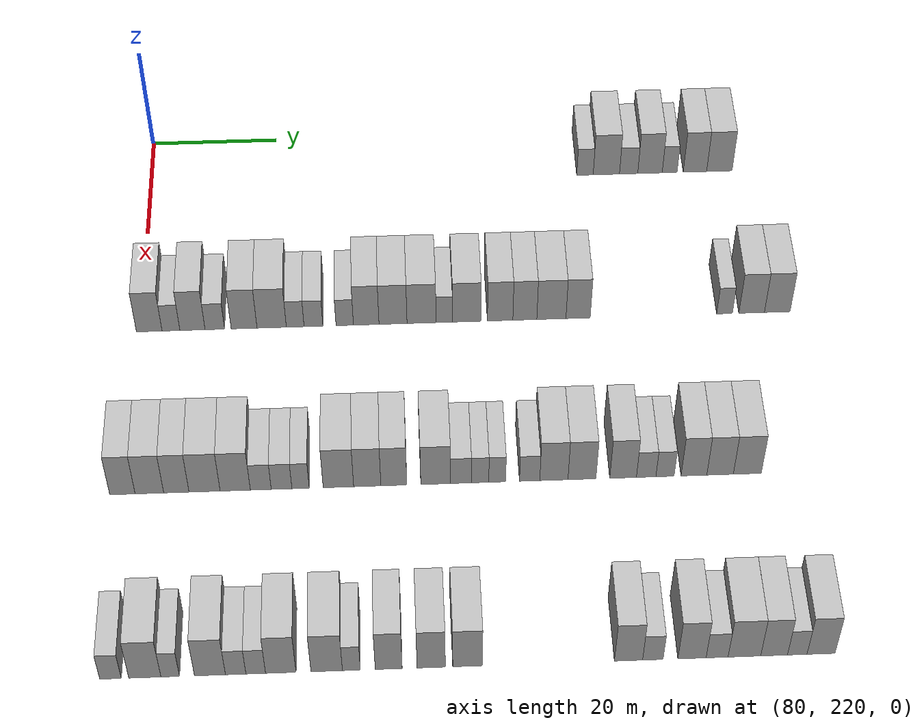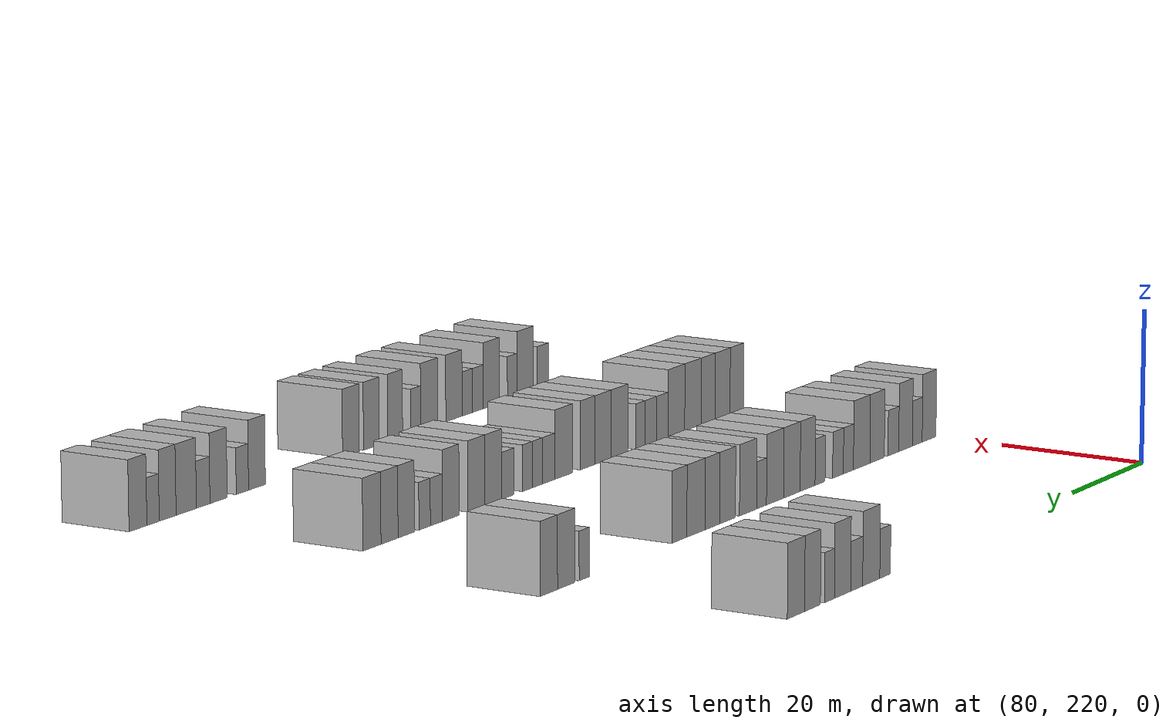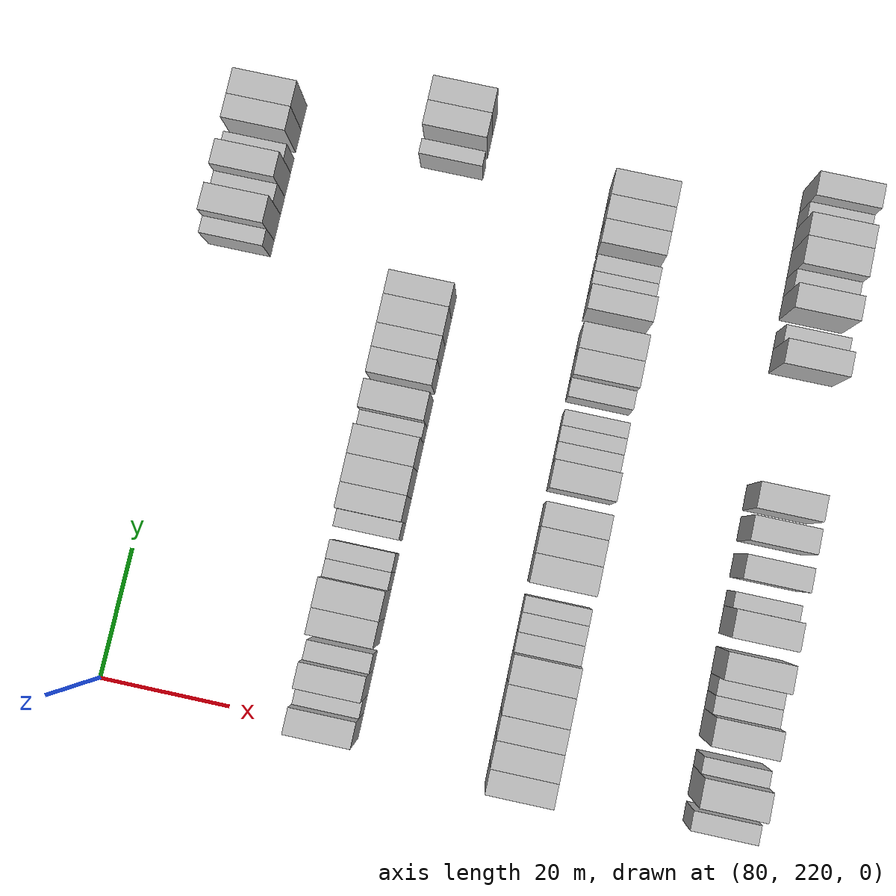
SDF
<sdf version="1.6">
 <world name="default">
  <model name="building_641">
   <static>1</static>
   <pose>85.0000 290.1294 0 0.000000 0.000000 0.000000</pose>
   <link name="link">
    <pose>0 0 3.00 0 0 0</pose>
    <collision name="collision"><geometry><box><size>10.0000 2.6706 6.0000</size></box></geometry></collision>
    <visual name="visual">
     <cast_shadows>0</cast_shadows>
     <geometry><box><size>10.0000 2.6706 6.0000</size></box></geometry>
     <material>
      <script>
       <uri>model://HANNAS_wall/materials/scripts</uri>
       <uri>model://HANNAS_wall/materials/textures</uri>
       <name>vrc/HANNAS_wall</name>
      </script>
     </material>
    </visual>
   </link>
  </model>
  <model name="building_642">
   <static>1</static>
   <pose>85.0000 293.5994 0 0.000000 0.000000 0.000000</pose>
   <link name="link">
    <pose>0 0 4.50 0 0 0</pose>
    <collision name="collision"><geometry><box><size>10.0000 4.2694 9.0000</size></box></geometry></collision>
    <visual name="visual">
     <cast_shadows>0</cast_shadows>
     <geometry><box><size>10.0000 4.2694 9.0000</size></box></geometry>
     <material>
      <script>
       <uri>model://HANNAS_wall/materials/scripts</uri>
       <uri>model://HANNAS_wall/materials/textures</uri>
       <name>vrc/HANNAS_wall</name>
      </script>
     </material>
    </visual>
   </link>
  </model>
  <model name="building_643">
   <static>1</static>
   <pose>85.0000 297.2171 0 0.000000 0.000000 0.000000</pose>
   <link name="link">
    <pose>0 0 3.00 0 0 0</pose>
    <collision name="collision"><geometry><box><size>10.0000 2.9660 6.0000</size></box></geometry></collision>
    <visual name="visual">
     <cast_shadows>0</cast_shadows>
     <geometry><box><size>10.0000 2.9660 6.0000</size></box></geometry>
     <material>
      <script>
       <uri>model://HANNAS_wall/materials/scripts</uri>
       <uri>model://HANNAS_wall/materials/textures</uri>
       <name>vrc/HANNAS_wall</name>
      </script>
     </material>
    </visual>
   </link>
  </model>
  <model name="building_644">
   <static>1</static>
   <pose>85.0000 300.6900 0 0.000000 0.000000 0.000000</pose>
   <link name="link">
    <pose>0 0 4.50 0 0 0</pose>
    <collision name="collision"><geometry><box><size>10.0000 3.9798 9.0000</size></box></geometry></collision>
    <visual name="visual">
     <cast_shadows>0</cast_shadows>
     <geometry><box><size>10.0000 3.9798 9.0000</size></box></geometry>
     <material>
      <script>
       <uri>model://HANNAS_wall/materials/scripts</uri>
       <uri>model://HANNAS_wall/materials/textures</uri>
       <name>vrc/HANNAS_wall</name>
      </script>
     </material>
    </visual>
   </link>
  </model>
  <model name="building_645">
   <static>1</static>
   <pose>85.0000 303.8897 0 0.000000 0.000000 0.000000</pose>
   <link name="link">
    <pose>0 0 3.00 0 0 0</pose>
    <collision name="collision"><geometry><box><size>10.0000 2.4196 6.0000</size></box></geometry></collision>
    <visual name="visual">
     <cast_shadows>0</cast_shadows>
     <geometry><box><size>10.0000 2.4196 6.0000</size></box></geometry>
     <material>
      <script>
       <uri>model://HANNAS_wall/materials/scripts</uri>
       <uri>model://HANNAS_wall/materials/textures</uri>
       <name>vrc/HANNAS_wall</name>
      </script>
     </material>
    </visual>
   </link>
  </model>
  <model name="building_646">
   <static>1</static>
   <pose>85.0000 308.0054 0 0.000000 0.000000 0.000000</pose>
   <link name="link">
    <pose>0 0 4.50 0 0 0</pose>
    <collision name="collision"><geometry><box><size>10.0000 3.8120 9.0000</size></box></geometry></collision>
    <visual name="visual">
     <cast_shadows>0</cast_shadows>
     <geometry><box><size>10.0000 3.8120 9.0000</size></box></geometry>
     <material>
      <script>
       <uri>model://HANNAS_wall/materials/scripts</uri>
       <uri>model://HANNAS_wall/materials/textures</uri>
       <name>vrc/HANNAS_wall</name>
      </script>
     </material>
    </visual>
   </link>
  </model>
  <model name="building_647">
   <static>1</static>
   <pose>85.0000 311.9797 0 0.000000 0.000000 0.000000</pose>
   <link name="link">
    <pose>0 0 4.50 0 0 0</pose>
    <collision name="collision"><geometry><box><size>10.0000 4.1366 9.0000</size></box></geometry></collision>
    <visual name="visual">
     <cast_shadows>0</cast_shadows>
     <geometry><box><size>10.0000 4.1366 9.0000</size></box></geometry>
     <material>
      <script>
       <uri>model://HANNAS_wall/materials/scripts</uri>
       <uri>model://HANNAS_wall/materials/textures</uri>
       <name>vrc/HANNAS_wall</name>
      </script>
     </material>
    </visual>
   </link>
  </model>
  <model name="building_857">
   <static>1</static>
   <pose>115.0000 221.3921 0 0.000000 0.000000 0.000000</pose>
   <link name="link">
    <pose>0 0 4.50 0 0 0</pose>
    <collision name="collision"><geometry><box><size>10.0000 3.8877 9.0000</size></box></geometry></collision>
    <visual name="visual">
     <cast_shadows>0</cast_shadows>
     <geometry><box><size>10.0000 3.8877 9.0000</size></box></geometry>
     <material>
      <script>
       <uri>model://HANNAS_wall/materials/scripts</uri>
       <uri>model://HANNAS_wall/materials/textures</uri>
       <name>vrc/HANNAS_wall</name>
      </script>
     </material>
    </visual>
   </link>
  </model>
  <model name="building_858">
   <static>1</static>
   <pose>115.0000 224.6875 0 0.000000 0.000000 0.000000</pose>
   <link name="link">
    <pose>0 0 3.00 0 0 0</pose>
    <collision name="collision"><geometry><box><size>10.0000 2.7033 6.0000</size></box></geometry></collision>
    <visual name="visual">
     <cast_shadows>0</cast_shadows>
     <geometry><box><size>10.0000 2.7033 6.0000</size></box></geometry>
     <material>
      <script>
       <uri>model://HANNAS_wall/materials/scripts</uri>
       <uri>model://HANNAS_wall/materials/textures</uri>
       <name>vrc/HANNAS_wall</name>
      </script>
     </material>
    </visual>
   </link>
  </model>
  <model name="building_859">
   <static>1</static>
   <pose>115.0000 227.9486 0 0.000000 0.000000 0.000000</pose>
   <link name="link">
    <pose>0 0 4.50 0 0 0</pose>
    <collision name="collision"><geometry><box><size>10.0000 3.8188 9.0000</size></box></geometry></collision>
    <visual name="visual">
     <cast_shadows>0</cast_shadows>
     <geometry><box><size>10.0000 3.8188 9.0000</size></box></geometry>
     <material>
      <script>
       <uri>model://HANNAS_wall/materials/scripts</uri>
       <uri>model://HANNAS_wall/materials/textures</uri>
       <name>vrc/HANNAS_wall</name>
      </script>
     </material>
    </visual>
   </link>
  </model>
  <model name="building_860">
   <static>1</static>
   <pose>115.0000 231.3409 0 0.000000 0.000000 0.000000</pose>
   <link name="link">
    <pose>0 0 3.00 0 0 0</pose>
    <collision name="collision"><geometry><box><size>10.0000 2.9659 6.0000</size></box></geometry></collision>
    <visual name="visual">
     <cast_shadows>0</cast_shadows>
     <geometry><box><size>10.0000 2.9659 6.0000</size></box></geometry>
     <material>
      <script>
       <uri>model://HANNAS_wall/materials/scripts</uri>
       <uri>model://HANNAS_wall/materials/textures</uri>
       <name>vrc/HANNAS_wall</name>
      </script>
     </material>
    </visual>
   </link>
  </model>
  <model name="building_861">
   <static>1</static>
   <pose>115.0000 235.7855 0 0.000000 0.000000 0.000000</pose>
   <link name="link">
    <pose>0 0 4.50 0 0 0</pose>
    <collision name="collision"><geometry><box><size>10.0000 3.9233 9.0000</size></box></geometry></collision>
    <visual name="visual">
     <cast_shadows>0</cast_shadows>
     <geometry><box><size>10.0000 3.9233 9.0000</size></box></geometry>
     <material>
      <script>
       <uri>model://HANNAS_wall/materials/scripts</uri>
       <uri>model://HANNAS_wall/materials/textures</uri>
       <name>vrc/HANNAS_wall</name>
      </script>
     </material>
    </visual>
   </link>
  </model>
  <model name="building_862">
   <static>1</static>
   <pose>115.0000 239.9768 0 0.000000 0.000000 0.000000</pose>
   <link name="link">
    <pose>0 0 4.50 0 0 0</pose>
    <collision name="collision"><geometry><box><size>10.0000 4.4593 9.0000</size></box></geometry></collision>
    <visual name="visual">
     <cast_shadows>0</cast_shadows>
     <geometry><box><size>10.0000 4.4593 9.0000</size></box></geometry>
     <material>
      <script>
       <uri>model://HANNAS_wall/materials/scripts</uri>
       <uri>model://HANNAS_wall/materials/textures</uri>
       <name>vrc/HANNAS_wall</name>
      </script>
     </material>
    </visual>
   </link>
  </model>
  <model name="building_863">
   <static>1</static>
   <pose>115.0000 243.5546 0 0.000000 0.000000 0.000000</pose>
   <link name="link">
    <pose>0 0 3.00 0 0 0</pose>
    <collision name="collision"><geometry><box><size>10.0000 2.6963 6.0000</size></box></geometry></collision>
    <visual name="visual">
     <cast_shadows>0</cast_shadows>
     <geometry><box><size>10.0000 2.6963 6.0000</size></box></geometry>
     <material>
      <script>
       <uri>model://HANNAS_wall/materials/scripts</uri>
       <uri>model://HANNAS_wall/materials/textures</uri>
       <name>vrc/HANNAS_wall</name>
      </script>
     </material>
    </visual>
   </link>
  </model>
  <model name="building_864">
   <static>1</static>
   <pose>115.0000 246.3356 0 0.000000 0.000000 0.000000</pose>
   <link name="link">
    <pose>0 0 3.00 0 0 0</pose>
    <collision name="collision"><geometry><box><size>10.0000 2.8657 6.0000</size></box></geometry></collision>
    <visual name="visual">
     <cast_shadows>0</cast_shadows>
     <geometry><box><size>10.0000 2.8657 6.0000</size></box></geometry>
     <material>
      <script>
       <uri>model://HANNAS_wall/materials/scripts</uri>
       <uri>model://HANNAS_wall/materials/textures</uri>
       <name>vrc/HANNAS_wall</name>
      </script>
     </material>
    </visual>
   </link>
  </model>
  <model name="building_865">
   <static>1</static>
   <pose>115.0000 251.0928 0 0.000000 0.000000 0.000000</pose>
   <link name="link">
    <pose>0 0 3.00 0 0 0</pose>
    <collision name="collision"><geometry><box><size>10.0000 2.6486 6.0000</size></box></geometry></collision>
    <visual name="visual">
     <cast_shadows>0</cast_shadows>
     <geometry><box><size>10.0000 2.6486 6.0000</size></box></geometry>
     <material>
      <script>
       <uri>model://HANNAS_wall/materials/scripts</uri>
       <uri>model://HANNAS_wall/materials/textures</uri>
       <name>vrc/HANNAS_wall</name>
      </script>
     </material>
    </visual>
   </link>
  </model>
  <model name="building_866">
   <static>1</static>
   <pose>115.0000 254.3661 0 0.000000 0.000000 0.000000</pose>
   <link name="link">
    <pose>0 0 4.50 0 0 0</pose>
    <collision name="collision"><geometry><box><size>10.0000 3.8980 9.0000</size></box></geometry></collision>
    <visual name="visual">
     <cast_shadows>0</cast_shadows>
     <geometry><box><size>10.0000 3.8980 9.0000</size></box></geometry>
     <material>
      <script>
       <uri>model://HANNAS_wall/materials/scripts</uri>
       <uri>model://HANNAS_wall/materials/textures</uri>
       <name>vrc/HANNAS_wall</name>
      </script>
     </material>
    </visual>
   </link>
  </model>
  <model name="building_867">
   <static>1</static>
   <pose>115.0000 258.4513 0 0.000000 0.000000 0.000000</pose>
   <link name="link">
    <pose>0 0 4.50 0 0 0</pose>
    <collision name="collision"><geometry><box><size>10.0000 4.2724 9.0000</size></box></geometry></collision>
    <visual name="visual">
     <cast_shadows>0</cast_shadows>
     <geometry><box><size>10.0000 4.2724 9.0000</size></box></geometry>
     <material>
      <script>
       <uri>model://HANNAS_wall/materials/scripts</uri>
       <uri>model://HANNAS_wall/materials/textures</uri>
       <name>vrc/HANNAS_wall</name>
      </script>
     </material>
    </visual>
   </link>
  </model>
  <model name="building_868">
   <static>1</static>
   <pose>115.0000 262.8002 0 0.000000 0.000000 0.000000</pose>
   <link name="link">
    <pose>0 0 4.50 0 0 0</pose>
    <collision name="collision"><geometry><box><size>10.0000 4.4254 9.0000</size></box></geometry></collision>
    <visual name="visual">
     <cast_shadows>0</cast_shadows>
     <geometry><box><size>10.0000 4.4254 9.0000</size></box></geometry>
     <material>
      <script>
       <uri>model://HANNAS_wall/materials/scripts</uri>
       <uri>model://HANNAS_wall/materials/textures</uri>
       <name>vrc/HANNAS_wall</name>
      </script>
     </material>
    </visual>
   </link>
  </model>
  <model name="building_869">
   <static>1</static>
   <pose>115.0000 266.2693 0 0.000000 0.000000 0.000000</pose>
   <link name="link">
    <pose>0 0 3.00 0 0 0</pose>
    <collision name="collision"><geometry><box><size>10.0000 2.5130 6.0000</size></box></geometry></collision>
    <visual name="visual">
     <cast_shadows>0</cast_shadows>
     <geometry><box><size>10.0000 2.5130 6.0000</size></box></geometry>
     <material>
      <script>
       <uri>model://HANNAS_wall/materials/scripts</uri>
       <uri>model://HANNAS_wall/materials/textures</uri>
       <name>vrc/HANNAS_wall</name>
      </script>
     </material>
    </visual>
   </link>
  </model>
  <model name="building_870">
   <static>1</static>
   <pose>115.0000 269.6935 0 0.000000 0.000000 0.000000</pose>
   <link name="link">
    <pose>0 0 4.50 0 0 0</pose>
    <collision name="collision"><geometry><box><size>10.0000 4.3353 9.0000</size></box></geometry></collision>
    <visual name="visual">
     <cast_shadows>0</cast_shadows>
     <geometry><box><size>10.0000 4.3353 9.0000</size></box></geometry>
     <material>
      <script>
       <uri>model://HANNAS_wall/materials/scripts</uri>
       <uri>model://HANNAS_wall/materials/textures</uri>
       <name>vrc/HANNAS_wall</name>
      </script>
     </material>
    </visual>
   </link>
  </model>
  <model name="building_871">
   <static>1</static>
   <pose>115.0000 274.8023 0 0.000000 0.000000 0.000000</pose>
   <link name="link">
    <pose>0 0 4.50 0 0 0</pose>
    <collision name="collision"><geometry><box><size>10.0000 3.8823 9.0000</size></box></geometry></collision>
    <visual name="visual">
     <cast_shadows>0</cast_shadows>
     <geometry><box><size>10.0000 3.8823 9.0000</size></box></geometry>
     <material>
      <script>
       <uri>model://HANNAS_wall/materials/scripts</uri>
       <uri>model://HANNAS_wall/materials/textures</uri>
       <name>vrc/HANNAS_wall</name>
      </script>
     </material>
    </visual>
   </link>
  </model>
  <model name="building_872">
   <static>1</static>
   <pose>115.0000 278.5787 0 0.000000 0.000000 0.000000</pose>
   <link name="link">
    <pose>0 0 4.50 0 0 0</pose>
    <collision name="collision"><geometry><box><size>10.0000 3.6706 9.0000</size></box></geometry></collision>
    <visual name="visual">
     <cast_shadows>0</cast_shadows>
     <geometry><box><size>10.0000 3.6706 9.0000</size></box></geometry>
     <material>
      <script>
       <uri>model://HANNAS_wall/materials/scripts</uri>
       <uri>model://HANNAS_wall/materials/textures</uri>
       <name>vrc/HANNAS_wall</name>
      </script>
     </material>
    </visual>
   </link>
  </model>
  <model name="building_873">
   <static>1</static>
   <pose>115.0000 282.6433 0 0.000000 0.000000 0.000000</pose>
   <link name="link">
    <pose>0 0 4.50 0 0 0</pose>
    <collision name="collision"><geometry><box><size>10.0000 4.4585 9.0000</size></box></geometry></collision>
    <visual name="visual">
     <cast_shadows>0</cast_shadows>
     <geometry><box><size>10.0000 4.4585 9.0000</size></box></geometry>
     <material>
      <script>
       <uri>model://HANNAS_wall/materials/scripts</uri>
       <uri>model://HANNAS_wall/materials/textures</uri>
       <name>vrc/HANNAS_wall</name>
      </script>
     </material>
    </visual>
   </link>
  </model>
  <model name="building_874">
   <static>1</static>
   <pose>115.0000 286.7255 0 0.000000 0.000000 0.000000</pose>
   <link name="link">
    <pose>0 0 4.50 0 0 0</pose>
    <collision name="collision"><geometry><box><size>10.0000 3.7059 9.0000</size></box></geometry></collision>
    <visual name="visual">
     <cast_shadows>0</cast_shadows>
     <geometry><box><size>10.0000 3.7059 9.0000</size></box></geometry>
     <material>
      <script>
       <uri>model://HANNAS_wall/materials/scripts</uri>
       <uri>model://HANNAS_wall/materials/textures</uri>
       <name>vrc/HANNAS_wall</name>
      </script>
     </material>
    </visual>
   </link>
  </model>
  <model name="building_875">
   <static>1</static>
   <pose>115.0000 309.2016 0 0.000000 0.000000 0.000000</pose>
   <link name="link">
    <pose>0 0 3.00 0 0 0</pose>
    <collision name="collision"><geometry><box><size>10.0000 2.4154 6.0000</size></box></geometry></collision>
    <visual name="visual">
     <cast_shadows>0</cast_shadows>
     <geometry><box><size>10.0000 2.4154 6.0000</size></box></geometry>
     <material>
      <script>
       <uri>model://HANNAS_wall/materials/scripts</uri>
       <uri>model://HANNAS_wall/materials/textures</uri>
       <name>vrc/HANNAS_wall</name>
      </script>
     </material>
    </visual>
   </link>
  </model>
  <model name="building_876">
   <static>1</static>
   <pose>115.0000 313.3740 0 0.000000 0.000000 0.000000</pose>
   <link name="link">
    <pose>0 0 4.50 0 0 0</pose>
    <collision name="collision"><geometry><box><size>10.0000 3.9293 9.0000</size></box></geometry></collision>
    <visual name="visual">
     <cast_shadows>0</cast_shadows>
     <geometry><box><size>10.0000 3.9293 9.0000</size></box></geometry>
     <material>
      <script>
       <uri>model://HANNAS_wall/materials/scripts</uri>
       <uri>model://HANNAS_wall/materials/textures</uri>
       <name>vrc/HANNAS_wall</name>
      </script>
     </material>
    </visual>
   </link>
  </model>
  <model name="building_877">
   <static>1</static>
   <pose>115.0000 317.3100 0 0.000000 0.000000 0.000000</pose>
   <link name="link">
    <pose>0 0 4.50 0 0 0</pose>
    <collision name="collision"><geometry><box><size>10.0000 3.9426 9.0000</size></box></geometry></collision>
    <visual name="visual">
     <cast_shadows>0</cast_shadows>
     <geometry><box><size>10.0000 3.9426 9.0000</size></box></geometry>
     <material>
      <script>
       <uri>model://HANNAS_wall/materials/scripts</uri>
       <uri>model://HANNAS_wall/materials/textures</uri>
       <name>vrc/HANNAS_wall</name>
      </script>
     </material>
    </visual>
   </link>
  </model>
  <model name="building_1091">
   <static>1</static>
   <pose>145.0000 219.2033 0 0.000000 0.000000 0.000000</pose>
   <link name="link">
    <pose>0 0 4.50 0 0 0</pose>
    <collision name="collision"><geometry><box><size>10.0000 3.6208 9.0000</size></box></geometry></collision>
    <visual name="visual">
     <cast_shadows>0</cast_shadows>
     <geometry><box><size>10.0000 3.6208 9.0000</size></box></geometry>
     <material>
      <script>
       <uri>model://HANNAS_wall/materials/scripts</uri>
       <uri>model://HANNAS_wall/materials/textures</uri>
       <name>vrc/HANNAS_wall</name>
      </script>
     </material>
    </visual>
   </link>
  </model>
  <model name="building_1092">
   <static>1</static>
   <pose>145.0000 223.0494 0 0.000000 0.000000 0.000000</pose>
   <link name="link">
    <pose>0 0 4.50 0 0 0</pose>
    <collision name="collision"><geometry><box><size>10.0000 4.0715 9.0000</size></box></geometry></collision>
    <visual name="visual">
     <cast_shadows>0</cast_shadows>
     <geometry><box><size>10.0000 4.0715 9.0000</size></box></geometry>
     <material>
      <script>
       <uri>model://HANNAS_wall/materials/scripts</uri>
       <uri>model://HANNAS_wall/materials/textures</uri>
       <name>vrc/HANNAS_wall</name>
      </script>
     </material>
    </visual>
   </link>
  </model>
  <model name="building_1093">
   <static>1</static>
   <pose>145.0000 226.8890 0 0.000000 0.000000 0.000000</pose>
   <link name="link">
    <pose>0 0 4.50 0 0 0</pose>
    <collision name="collision"><geometry><box><size>10.0000 3.6078 9.0000</size></box></geometry></collision>
    <visual name="visual">
     <cast_shadows>0</cast_shadows>
     <geometry><box><size>10.0000 3.6078 9.0000</size></box></geometry>
     <material>
      <script>
       <uri>model://HANNAS_wall/materials/scripts</uri>
       <uri>model://HANNAS_wall/materials/textures</uri>
       <name>vrc/HANNAS_wall</name>
      </script>
     </material>
    </visual>
   </link>
  </model>
  <model name="building_1094">
   <static>1</static>
   <pose>145.0000 230.9127 0 0.000000 0.000000 0.000000</pose>
   <link name="link">
    <pose>0 0 4.50 0 0 0</pose>
    <collision name="collision"><geometry><box><size>10.0000 4.4395 9.0000</size></box></geometry></collision>
    <visual name="visual">
     <cast_shadows>0</cast_shadows>
     <geometry><box><size>10.0000 4.4395 9.0000</size></box></geometry>
     <material>
      <script>
       <uri>model://HANNAS_wall/materials/scripts</uri>
       <uri>model://HANNAS_wall/materials/textures</uri>
       <name>vrc/HANNAS_wall</name>
      </script>
     </material>
    </visual>
   </link>
  </model>
  <model name="building_1095">
   <static>1</static>
   <pose>145.0000 235.2919 0 0.000000 0.000000 0.000000</pose>
   <link name="link">
    <pose>0 0 4.50 0 0 0</pose>
    <collision name="collision"><geometry><box><size>10.0000 4.3190 9.0000</size></box></geometry></collision>
    <visual name="visual">
     <cast_shadows>0</cast_shadows>
     <geometry><box><size>10.0000 4.3190 9.0000</size></box></geometry>
     <material>
      <script>
       <uri>model://HANNAS_wall/materials/scripts</uri>
       <uri>model://HANNAS_wall/materials/textures</uri>
       <name>vrc/HANNAS_wall</name>
      </script>
     </material>
    </visual>
   </link>
  </model>
  <model name="building_1096">
   <static>1</static>
   <pose>145.0000 238.9446 0 0.000000 0.000000 0.000000</pose>
   <link name="link">
    <pose>0 0 3.00 0 0 0</pose>
    <collision name="collision"><geometry><box><size>10.0000 2.9864 6.0000</size></box></geometry></collision>
    <visual name="visual">
     <cast_shadows>0</cast_shadows>
     <geometry><box><size>10.0000 2.9864 6.0000</size></box></geometry>
     <material>
      <script>
       <uri>model://HANNAS_wall/materials/scripts</uri>
       <uri>model://HANNAS_wall/materials/textures</uri>
       <name>vrc/HANNAS_wall</name>
      </script>
     </material>
    </visual>
   </link>
  </model>
  <model name="building_1097">
   <static>1</static>
   <pose>145.0000 241.9147 0 0.000000 0.000000 0.000000</pose>
   <link name="link">
    <pose>0 0 3.00 0 0 0</pose>
    <collision name="collision"><geometry><box><size>10.0000 2.9536 6.0000</size></box></geometry></collision>
    <visual name="visual">
     <cast_shadows>0</cast_shadows>
     <geometry><box><size>10.0000 2.9536 6.0000</size></box></geometry>
     <material>
      <script>
       <uri>model://HANNAS_wall/materials/scripts</uri>
       <uri>model://HANNAS_wall/materials/textures</uri>
       <name>vrc/HANNAS_wall</name>
      </script>
     </material>
    </visual>
   </link>
  </model>
  <model name="building_1098">
   <static>1</static>
   <pose>145.0000 244.6287 0 0.000000 0.000000 0.000000</pose>
   <link name="link">
    <pose>0 0 3.00 0 0 0</pose>
    <collision name="collision"><geometry><box><size>10.0000 2.4745 6.0000</size></box></geometry></collision>
    <visual name="visual">
     <cast_shadows>0</cast_shadows>
     <geometry><box><size>10.0000 2.4745 6.0000</size></box></geometry>
     <material>
      <script>
       <uri>model://HANNAS_wall/materials/scripts</uri>
       <uri>model://HANNAS_wall/materials/textures</uri>
       <name>vrc/HANNAS_wall</name>
      </script>
     </material>
    </visual>
   </link>
  </model>
  <model name="building_1099">
   <static>1</static>
   <pose>145.0000 250.0461 0 0.000000 0.000000 0.000000</pose>
   <link name="link">
    <pose>0 0 4.50 0 0 0</pose>
    <collision name="collision"><geometry><box><size>10.0000 4.3604 9.0000</size></box></geometry></collision>
    <visual name="visual">
     <cast_shadows>0</cast_shadows>
     <geometry><box><size>10.0000 4.3604 9.0000</size></box></geometry>
     <material>
      <script>
       <uri>model://HANNAS_wall/materials/scripts</uri>
       <uri>model://HANNAS_wall/materials/textures</uri>
       <name>vrc/HANNAS_wall</name>
      </script>
     </material>
    </visual>
   </link>
  </model>
  <model name="building_1100">
   <static>1</static>
   <pose>145.0000 254.1787 0 0.000000 0.000000 0.000000</pose>
   <link name="link">
    <pose>0 0 4.50 0 0 0</pose>
    <collision name="collision"><geometry><box><size>10.0000 3.9048 9.0000</size></box></geometry></collision>
    <visual name="visual">
     <cast_shadows>0</cast_shadows>
     <geometry><box><size>10.0000 3.9048 9.0000</size></box></geometry>
     <material>
      <script>
       <uri>model://HANNAS_wall/materials/scripts</uri>
       <uri>model://HANNAS_wall/materials/textures</uri>
       <name>vrc/HANNAS_wall</name>
      </script>
     </material>
    </visual>
   </link>
  </model>
  <model name="building_1101">
   <static>1</static>
   <pose>145.0000 257.9894 0 0.000000 0.000000 0.000000</pose>
   <link name="link">
    <pose>0 0 4.50 0 0 0</pose>
    <collision name="collision"><geometry><box><size>10.0000 3.7167 9.0000</size></box></geometry></collision>
    <visual name="visual">
     <cast_shadows>0</cast_shadows>
     <geometry><box><size>10.0000 3.7167 9.0000</size></box></geometry>
     <material>
      <script>
       <uri>model://HANNAS_wall/materials/scripts</uri>
       <uri>model://HANNAS_wall/materials/textures</uri>
       <name>vrc/HANNAS_wall</name>
      </script>
     </material>
    </visual>
   </link>
  </model>
  <model name="building_1102">
   <static>1</static>
   <pose>145.0000 263.9871 0 0.000000 0.000000 0.000000</pose>
   <link name="link">
    <pose>0 0 4.50 0 0 0</pose>
    <collision name="collision"><geometry><box><size>10.0000 4.2787 9.0000</size></box></geometry></collision>
    <visual name="visual">
     <cast_shadows>0</cast_shadows>
     <geometry><box><size>10.0000 4.2787 9.0000</size></box></geometry>
     <material>
      <script>
       <uri>model://HANNAS_wall/materials/scripts</uri>
       <uri>model://HANNAS_wall/materials/textures</uri>
       <name>vrc/HANNAS_wall</name>
      </script>
     </material>
    </visual>
   </link>
  </model>
  <model name="building_1103">
   <static>1</static>
   <pose>145.0000 267.6201 0 0.000000 0.000000 0.000000</pose>
   <link name="link">
    <pose>0 0 3.00 0 0 0</pose>
    <collision name="collision"><geometry><box><size>10.0000 2.9871 6.0000</size></box></geometry></collision>
    <visual name="visual">
     <cast_shadows>0</cast_shadows>
     <geometry><box><size>10.0000 2.9871 6.0000</size></box></geometry>
     <material>
      <script>
       <uri>model://HANNAS_wall/materials/scripts</uri>
       <uri>model://HANNAS_wall/materials/textures</uri>
       <name>vrc/HANNAS_wall</name>
      </script>
     </material>
    </visual>
   </link>
  </model>
  <model name="building_1104">
   <static>1</static>
   <pose>145.0000 270.3592 0 0.000000 0.000000 0.000000</pose>
   <link name="link">
    <pose>0 0 3.00 0 0 0</pose>
    <collision name="collision"><geometry><box><size>10.0000 2.4911 6.0000</size></box></geometry></collision>
    <visual name="visual">
     <cast_shadows>0</cast_shadows>
     <geometry><box><size>10.0000 2.4911 6.0000</size></box></geometry>
     <material>
      <script>
       <uri>model://HANNAS_wall/materials/scripts</uri>
       <uri>model://HANNAS_wall/materials/textures</uri>
       <name>vrc/HANNAS_wall</name>
      </script>
     </material>
    </visual>
   </link>
  </model>
  <model name="building_1105">
   <static>1</static>
   <pose>145.0000 272.8156 0 0.000000 0.000000 0.000000</pose>
   <link name="link">
    <pose>0 0 3.00 0 0 0</pose>
    <collision name="collision"><geometry><box><size>10.0000 2.4217 6.0000</size></box></geometry></collision>
    <visual name="visual">
     <cast_shadows>0</cast_shadows>
     <geometry><box><size>10.0000 2.4217 6.0000</size></box></geometry>
     <material>
      <script>
       <uri>model://HANNAS_wall/materials/scripts</uri>
       <uri>model://HANNAS_wall/materials/textures</uri>
       <name>vrc/HANNAS_wall</name>
      </script>
     </material>
    </visual>
   </link>
  </model>
  <model name="building_1106">
   <static>1</static>
   <pose>145.0000 277.4819 0 0.000000 0.000000 0.000000</pose>
   <link name="link">
    <pose>0 0 3.00 0 0 0</pose>
    <collision name="collision"><geometry><box><size>10.0000 2.9110 6.0000</size></box></geometry></collision>
    <visual name="visual">
     <cast_shadows>0</cast_shadows>
     <geometry><box><size>10.0000 2.9110 6.0000</size></box></geometry>
     <material>
      <script>
       <uri>model://HANNAS_wall/materials/scripts</uri>
       <uri>model://HANNAS_wall/materials/textures</uri>
       <name>vrc/HANNAS_wall</name>
      </script>
     </material>
    </visual>
   </link>
  </model>
  <model name="building_1107">
   <static>1</static>
   <pose>145.0000 280.9674 0 0.000000 0.000000 0.000000</pose>
   <link name="link">
    <pose>0 0 4.50 0 0 0</pose>
    <collision name="collision"><geometry><box><size>10.0000 4.0600 9.0000</size></box></geometry></collision>
    <visual name="visual">
     <cast_shadows>0</cast_shadows>
     <geometry><box><size>10.0000 4.0600 9.0000</size></box></geometry>
     <material>
      <script>
       <uri>model://HANNAS_wall/materials/scripts</uri>
       <uri>model://HANNAS_wall/materials/textures</uri>
       <name>vrc/HANNAS_wall</name>
      </script>
     </material>
    </visual>
   </link>
  </model>
  <model name="building_1108">
   <static>1</static>
   <pose>145.0000 285.0097 0 0.000000 0.000000 0.000000</pose>
   <link name="link">
    <pose>0 0 4.50 0 0 0</pose>
    <collision name="collision"><geometry><box><size>10.0000 4.0245 9.0000</size></box></geometry></collision>
    <visual name="visual">
     <cast_shadows>0</cast_shadows>
     <geometry><box><size>10.0000 4.0245 9.0000</size></box></geometry>
     <material>
      <script>
       <uri>model://HANNAS_wall/materials/scripts</uri>
       <uri>model://HANNAS_wall/materials/textures</uri>
       <name>vrc/HANNAS_wall</name>
      </script>
     </material>
    </visual>
   </link>
  </model>
  <model name="building_1109">
   <static>1</static>
   <pose>145.0000 290.9435 0 0.000000 0.000000 0.000000</pose>
   <link name="link">
    <pose>0 0 4.50 0 0 0</pose>
    <collision name="collision"><geometry><box><size>10.0000 3.8432 9.0000</size></box></geometry></collision>
    <visual name="visual">
     <cast_shadows>0</cast_shadows>
     <geometry><box><size>10.0000 3.8432 9.0000</size></box></geometry>
     <material>
      <script>
       <uri>model://HANNAS_wall/materials/scripts</uri>
       <uri>model://HANNAS_wall/materials/textures</uri>
       <name>vrc/HANNAS_wall</name>
      </script>
     </material>
    </visual>
   </link>
  </model>
  <model name="building_1110">
   <static>1</static>
   <pose>145.0000 294.2695 0 0.000000 0.000000 0.000000</pose>
   <link name="link">
    <pose>0 0 3.00 0 0 0</pose>
    <collision name="collision"><geometry><box><size>10.0000 2.8088 6.0000</size></box></geometry></collision>
    <visual name="visual">
     <cast_shadows>0</cast_shadows>
     <geometry><box><size>10.0000 2.8088 6.0000</size></box></geometry>
     <material>
      <script>
       <uri>model://HANNAS_wall/materials/scripts</uri>
       <uri>model://HANNAS_wall/materials/textures</uri>
       <name>vrc/HANNAS_wall</name>
      </script>
     </material>
    </visual>
   </link>
  </model>
  <model name="building_1111">
   <static>1</static>
   <pose>145.0000 296.9844 0 0.000000 0.000000 0.000000</pose>
   <link name="link">
    <pose>0 0 3.00 0 0 0</pose>
    <collision name="collision"><geometry><box><size>10.0000 2.6209 6.0000</size></box></geometry></collision>
    <visual name="visual">
     <cast_shadows>0</cast_shadows>
     <geometry><box><size>10.0000 2.6209 6.0000</size></box></geometry>
     <material>
      <script>
       <uri>model://HANNAS_wall/materials/scripts</uri>
       <uri>model://HANNAS_wall/materials/textures</uri>
       <name>vrc/HANNAS_wall</name>
      </script>
     </material>
    </visual>
   </link>
  </model>
  <model name="building_1112">
   <static>1</static>
   <pose>145.0000 301.1589 0 0.000000 0.000000 0.000000</pose>
   <link name="link">
    <pose>0 0 4.50 0 0 0</pose>
    <collision name="collision"><geometry><box><size>10.0000 3.7281 9.0000</size></box></geometry></collision>
    <visual name="visual">
     <cast_shadows>0</cast_shadows>
     <geometry><box><size>10.0000 3.7281 9.0000</size></box></geometry>
     <material>
      <script>
       <uri>model://HANNAS_wall/materials/scripts</uri>
       <uri>model://HANNAS_wall/materials/textures</uri>
       <name>vrc/HANNAS_wall</name>
      </script>
     </material>
    </visual>
   </link>
  </model>
  <model name="building_1113">
   <static>1</static>
   <pose>145.0000 304.9369 0 0.000000 0.000000 0.000000</pose>
   <link name="link">
    <pose>0 0 4.50 0 0 0</pose>
    <collision name="collision"><geometry><box><size>10.0000 3.8279 9.0000</size></box></geometry></collision>
    <visual name="visual">
     <cast_shadows>0</cast_shadows>
     <geometry><box><size>10.0000 3.8279 9.0000</size></box></geometry>
     <material>
      <script>
       <uri>model://HANNAS_wall/materials/scripts</uri>
       <uri>model://HANNAS_wall/materials/textures</uri>
       <name>vrc/HANNAS_wall</name>
      </script>
     </material>
    </visual>
   </link>
  </model>
  <model name="building_1114">
   <static>1</static>
   <pose>145.0000 308.8697 0 0.000000 0.000000 0.000000</pose>
   <link name="link">
    <pose>0 0 4.50 0 0 0</pose>
    <collision name="collision"><geometry><box><size>10.0000 4.0377 9.0000</size></box></geometry></collision>
    <visual name="visual">
     <cast_shadows>0</cast_shadows>
     <geometry><box><size>10.0000 4.0377 9.0000</size></box></geometry>
     <material>
      <script>
       <uri>model://HANNAS_wall/materials/scripts</uri>
       <uri>model://HANNAS_wall/materials/textures</uri>
       <name>vrc/HANNAS_wall</name>
      </script>
     </material>
    </visual>
   </link>
  </model>
  <model name="building_1312">
   <static>1</static>
   <pose>175.0000 219.4947 0 0.000000 0.000000 0.000000</pose>
   <link name="link">
    <pose>0 0 3.00 0 0 0</pose>
    <collision name="collision"><geometry><box><size>10.0000 2.8728 6.0000</size></box></geometry></collision>
    <visual name="visual">
     <cast_shadows>0</cast_shadows>
     <geometry><box><size>10.0000 2.8728 6.0000</size></box></geometry>
     <material>
      <script>
       <uri>model://HANNAS_wall/materials/scripts</uri>
       <uri>model://HANNAS_wall/materials/textures</uri>
       <name>vrc/HANNAS_wall</name>
      </script>
     </material>
    </visual>
   </link>
  </model>
  <model name="building_1313">
   <static>1</static>
   <pose>175.0000 224.0774 0 0.000000 0.000000 0.000000</pose>
   <link name="link">
    <pose>0 0 4.50 0 0 0</pose>
    <collision name="collision"><geometry><box><size>10.0000 4.2928 9.0000</size></box></geometry></collision>
    <visual name="visual">
     <cast_shadows>0</cast_shadows>
     <geometry><box><size>10.0000 4.2928 9.0000</size></box></geometry>
     <material>
      <script>
       <uri>model://HANNAS_wall/materials/scripts</uri>
       <uri>model://HANNAS_wall/materials/textures</uri>
       <name>vrc/HANNAS_wall</name>
      </script>
     </material>
    </visual>
   </link>
  </model>
  <model name="building_1314">
   <static>1</static>
   <pose>175.0000 227.4621 0 0.000000 0.000000 0.000000</pose>
   <link name="link">
    <pose>0 0 3.00 0 0 0</pose>
    <collision name="collision"><geometry><box><size>10.0000 2.4765 6.0000</size></box></geometry></collision>
    <visual name="visual">
     <cast_shadows>0</cast_shadows>
     <geometry><box><size>10.0000 2.4765 6.0000</size></box></geometry>
     <material>
      <script>
       <uri>model://HANNAS_wall/materials/scripts</uri>
       <uri>model://HANNAS_wall/materials/textures</uri>
       <name>vrc/HANNAS_wall</name>
      </script>
     </material>
    </visual>
   </link>
  </model>
  <model name="building_1315">
   <static>1</static>
   <pose>175.0000 232.7687 0 0.000000 0.000000 0.000000</pose>
   <link name="link">
    <pose>0 0 4.50 0 0 0</pose>
    <collision name="collision"><geometry><box><size>10.0000 4.1368 9.0000</size></box></geometry></collision>
    <visual name="visual">
     <cast_shadows>0</cast_shadows>
     <geometry><box><size>10.0000 4.1368 9.0000</size></box></geometry>
     <material>
      <script>
       <uri>model://HANNAS_wall/materials/scripts</uri>
       <uri>model://HANNAS_wall/materials/textures</uri>
       <name>vrc/HANNAS_wall</name>
      </script>
     </material>
    </visual>
   </link>
  </model>
  <model name="building_1316">
   <static>1</static>
   <pose>175.0000 236.2045 0 0.000000 0.000000 0.000000</pose>
   <link name="link">
    <pose>0 0 3.00 0 0 0</pose>
    <collision name="collision"><geometry><box><size>10.0000 2.7348 6.0000</size></box></geometry></collision>
    <visual name="visual">
     <cast_shadows>0</cast_shadows>
     <geometry><box><size>10.0000 2.7348 6.0000</size></box></geometry>
     <material>
      <script>
       <uri>model://HANNAS_wall/materials/scripts</uri>
       <uri>model://HANNAS_wall/materials/textures</uri>
       <name>vrc/HANNAS_wall</name>
      </script>
     </material>
    </visual>
   </link>
  </model>
  <model name="building_1317">
   <static>1</static>
   <pose>175.0000 238.8842 0 0.000000 0.000000 0.000000</pose>
   <link name="link">
    <pose>0 0 3.00 0 0 0</pose>
    <collision name="collision"><geometry><box><size>10.0000 2.6246 6.0000</size></box></geometry></collision>
    <visual name="visual">
     <cast_shadows>0</cast_shadows>
     <geometry><box><size>10.0000 2.6246 6.0000</size></box></geometry>
     <material>
      <script>
       <uri>model://HANNAS_wall/materials/scripts</uri>
       <uri>model://HANNAS_wall/materials/textures</uri>
       <name>vrc/HANNAS_wall</name>
      </script>
     </material>
    </visual>
   </link>
  </model>
  <model name="building_1318">
   <static>1</static>
   <pose>175.0000 242.2391 0 0.000000 0.000000 0.000000</pose>
   <link name="link">
    <pose>0 0 4.50 0 0 0</pose>
    <collision name="collision"><geometry><box><size>10.0000 4.0853 9.0000</size></box></geometry></collision>
    <visual name="visual">
     <cast_shadows>0</cast_shadows>
     <geometry><box><size>10.0000 4.0853 9.0000</size></box></geometry>
     <material>
      <script>
       <uri>model://HANNAS_wall/materials/scripts</uri>
       <uri>model://HANNAS_wall/materials/textures</uri>
       <name>vrc/HANNAS_wall</name>
      </script>
     </material>
    </visual>
   </link>
  </model>
  <model name="building_1319">
   <static>1</static>
   <pose>175.0000 248.3865 0 0.000000 0.000000 0.000000</pose>
   <link name="link">
    <pose>0 0 4.50 0 0 0</pose>
    <collision name="collision"><geometry><box><size>10.0000 4.2095 9.0000</size></box></geometry></collision>
    <visual name="visual">
     <cast_shadows>0</cast_shadows>
     <geometry><box><size>10.0000 4.2095 9.0000</size></box></geometry>
     <material>
      <script>
       <uri>model://HANNAS_wall/materials/scripts</uri>
       <uri>model://HANNAS_wall/materials/textures</uri>
       <name>vrc/HANNAS_wall</name>
      </script>
     </material>
    </visual>
   </link>
  </model>
  <model name="building_1320">
   <static>1</static>
   <pose>175.0000 251.6943 0 0.000000 0.000000 0.000000</pose>
   <link name="link">
    <pose>0 0 3.00 0 0 0</pose>
    <collision name="collision"><geometry><box><size>10.0000 2.4063 6.0000</size></box></geometry></collision>
    <visual name="visual">
     <cast_shadows>0</cast_shadows>
     <geometry><box><size>10.0000 2.4063 6.0000</size></box></geometry>
     <material>
      <script>
       <uri>model://HANNAS_wall/materials/scripts</uri>
       <uri>model://HANNAS_wall/materials/textures</uri>
       <name>vrc/HANNAS_wall</name>
      </script>
     </material>
    </visual>
   </link>
  </model>
  <model name="building_1321">
   <static>1</static>
   <pose>175.0000 256.7027 0 0.000000 0.000000 0.000000</pose>
   <link name="link">
    <pose>0 0 4.50 0 0 0</pose>
    <collision name="collision"><geometry><box><size>10.0000 3.6104 9.0000</size></box></geometry></collision>
    <visual name="visual">
     <cast_shadows>0</cast_shadows>
     <geometry><box><size>10.0000 3.6104 9.0000</size></box></geometry>
     <material>
      <script>
       <uri>model://HANNAS_wall/materials/scripts</uri>
       <uri>model://HANNAS_wall/materials/textures</uri>
       <name>vrc/HANNAS_wall</name>
      </script>
     </material>
    </visual>
   </link>
  </model>
  <model name="building_1322">
   <static>1</static>
   <pose>175.0000 262.4072 0 0.000000 0.000000 0.000000</pose>
   <link name="link">
    <pose>0 0 4.50 0 0 0</pose>
    <collision name="collision"><geometry><box><size>10.0000 3.7985 9.0000</size></box></geometry></collision>
    <visual name="visual">
     <cast_shadows>0</cast_shadows>
     <geometry><box><size>10.0000 3.7985 9.0000</size></box></geometry>
     <material>
      <script>
       <uri>model://HANNAS_wall/materials/scripts</uri>
       <uri>model://HANNAS_wall/materials/textures</uri>
       <name>vrc/HANNAS_wall</name>
      </script>
     </material>
    </visual>
   </link>
  </model>
  <model name="building_1323">
   <static>1</static>
   <pose>175.0000 267.2923 0 0.000000 0.000000 0.000000</pose>
   <link name="link">
    <pose>0 0 4.50 0 0 0</pose>
    <collision name="collision"><geometry><box><size>10.0000 3.9717 9.0000</size></box></geometry></collision>
    <visual name="visual">
     <cast_shadows>0</cast_shadows>
     <geometry><box><size>10.0000 3.9717 9.0000</size></box></geometry>
     <material>
      <script>
       <uri>model://HANNAS_wall/materials/scripts</uri>
       <uri>model://HANNAS_wall/materials/textures</uri>
       <name>vrc/HANNAS_wall</name>
      </script>
     </material>
    </visual>
   </link>
  </model>
  <model name="building_1324">
   <static>1</static>
   <pose>175.0000 288.9836 0 0.000000 0.000000 0.000000</pose>
   <link name="link">
    <pose>0 0 4.50 0 0 0</pose>
    <collision name="collision"><geometry><box><size>10.0000 3.8036 9.0000</size></box></geometry></collision>
    <visual name="visual">
     <cast_shadows>0</cast_shadows>
     <geometry><box><size>10.0000 3.8036 9.0000</size></box></geometry>
     <material>
      <script>
       <uri>model://HANNAS_wall/materials/scripts</uri>
       <uri>model://HANNAS_wall/materials/textures</uri>
       <name>vrc/HANNAS_wall</name>
      </script>
     </material>
    </visual>
   </link>
  </model>
  <model name="building_1325">
   <static>1</static>
   <pose>175.0000 292.2684 0 0.000000 0.000000 0.000000</pose>
   <link name="link">
    <pose>0 0 3.00 0 0 0</pose>
    <collision name="collision"><geometry><box><size>10.0000 2.7660 6.0000</size></box></geometry></collision>
    <visual name="visual">
     <cast_shadows>0</cast_shadows>
     <geometry><box><size>10.0000 2.7660 6.0000</size></box></geometry>
     <material>
      <script>
       <uri>model://HANNAS_wall/materials/scripts</uri>
       <uri>model://HANNAS_wall/materials/textures</uri>
       <name>vrc/HANNAS_wall</name>
      </script>
     </material>
    </visual>
   </link>
  </model>
  <model name="building_1326">
   <static>1</static>
   <pose>175.0000 297.5581 0 0.000000 0.000000 0.000000</pose>
   <link name="link">
    <pose>0 0 4.50 0 0 0</pose>
    <collision name="collision"><geometry><box><size>10.0000 3.8135 9.0000</size></box></geometry></collision>
    <visual name="visual">
     <cast_shadows>0</cast_shadows>
     <geometry><box><size>10.0000 3.8135 9.0000</size></box></geometry>
     <material>
      <script>
       <uri>model://HANNAS_wall/materials/scripts</uri>
       <uri>model://HANNAS_wall/materials/textures</uri>
       <name>vrc/HANNAS_wall</name>
      </script>
     </material>
    </visual>
   </link>
  </model>
  <model name="building_1327">
   <static>1</static>
   <pose>175.0000 300.9520 0 0.000000 0.000000 0.000000</pose>
   <link name="link">
    <pose>0 0 3.00 0 0 0</pose>
    <collision name="collision"><geometry><box><size>10.0000 2.9742 6.0000</size></box></geometry></collision>
    <visual name="visual">
     <cast_shadows>0</cast_shadows>
     <geometry><box><size>10.0000 2.9742 6.0000</size></box></geometry>
     <material>
      <script>
       <uri>model://HANNAS_wall/materials/scripts</uri>
       <uri>model://HANNAS_wall/materials/textures</uri>
       <name>vrc/HANNAS_wall</name>
      </script>
     </material>
    </visual>
   </link>
  </model>
  <model name="building_1328">
   <static>1</static>
   <pose>175.0000 304.6490 0 0.000000 0.000000 0.000000</pose>
   <link name="link">
    <pose>0 0 4.50 0 0 0</pose>
    <collision name="collision"><geometry><box><size>10.0000 4.4199 9.0000</size></box></geometry></collision>
    <visual name="visual">
     <cast_shadows>0</cast_shadows>
     <geometry><box><size>10.0000 4.4199 9.0000</size></box></geometry>
     <material>
      <script>
       <uri>model://HANNAS_wall/materials/scripts</uri>
       <uri>model://HANNAS_wall/materials/textures</uri>
       <name>vrc/HANNAS_wall</name>
      </script>
     </material>
    </visual>
   </link>
  </model>
  <model name="building_1329">
   <static>1</static>
   <pose>175.0000 308.6750 0 0.000000 0.000000 0.000000</pose>
   <link name="link">
    <pose>0 0 4.50 0 0 0</pose>
    <collision name="collision"><geometry><box><size>10.0000 3.6320 9.0000</size></box></geometry></collision>
    <visual name="visual">
     <cast_shadows>0</cast_shadows>
     <geometry><box><size>10.0000 3.6320 9.0000</size></box></geometry>
     <material>
      <script>
       <uri>model://HANNAS_wall/materials/scripts</uri>
       <uri>model://HANNAS_wall/materials/textures</uri>
       <name>vrc/HANNAS_wall</name>
      </script>
     </material>
    </visual>
   </link>
  </model>
  <model name="building_1330">
   <static>1</static>
   <pose>175.0000 311.8110 0 0.000000 0.000000 0.000000</pose>
   <link name="link">
    <pose>0 0 3.00 0 0 0</pose>
    <collision name="collision"><geometry><box><size>10.0000 2.6400 6.0000</size></box></geometry></collision>
    <visual name="visual">
     <cast_shadows>0</cast_shadows>
     <geometry><box><size>10.0000 2.6400 6.0000</size></box></geometry>
     <material>
      <script>
       <uri>model://HANNAS_wall/materials/scripts</uri>
       <uri>model://HANNAS_wall/materials/textures</uri>
       <name>vrc/HANNAS_wall</name>
      </script>
     </material>
    </visual>
   </link>
  </model>
  <model name="building_1331">
   <static>1</static>
   <pose>175.0000 315.0320 0 0.000000 0.000000 0.000000</pose>
   <link name="link">
    <pose>0 0 4.50 0 0 0</pose>
    <collision name="collision"><geometry><box><size>10.0000 3.8020 9.0000</size></box></geometry></collision>
    <visual name="visual">
     <cast_shadows>0</cast_shadows>
     <geometry><box><size>10.0000 3.8020 9.0000</size></box></geometry>
     <material>
      <script>
       <uri>model://HANNAS_wall/materials/scripts</uri>
       <uri>model://HANNAS_wall/materials/textures</uri>
       <name>vrc/HANNAS_wall</name>
      </script>
     </material>
    </visual>
   </link>
  </model>
 </world>
</sdf>
